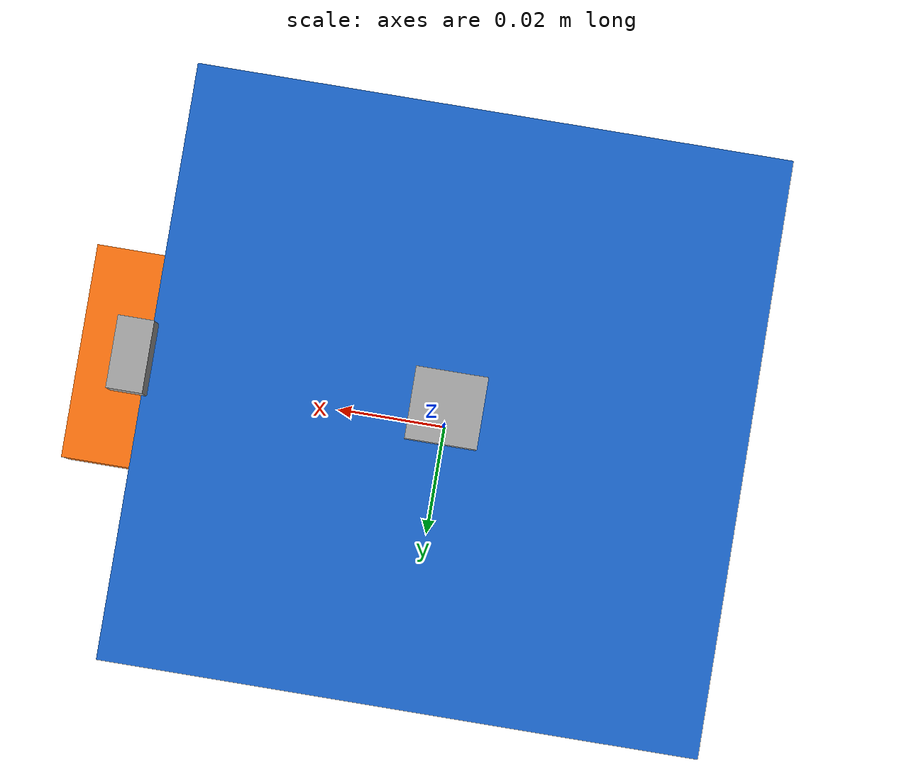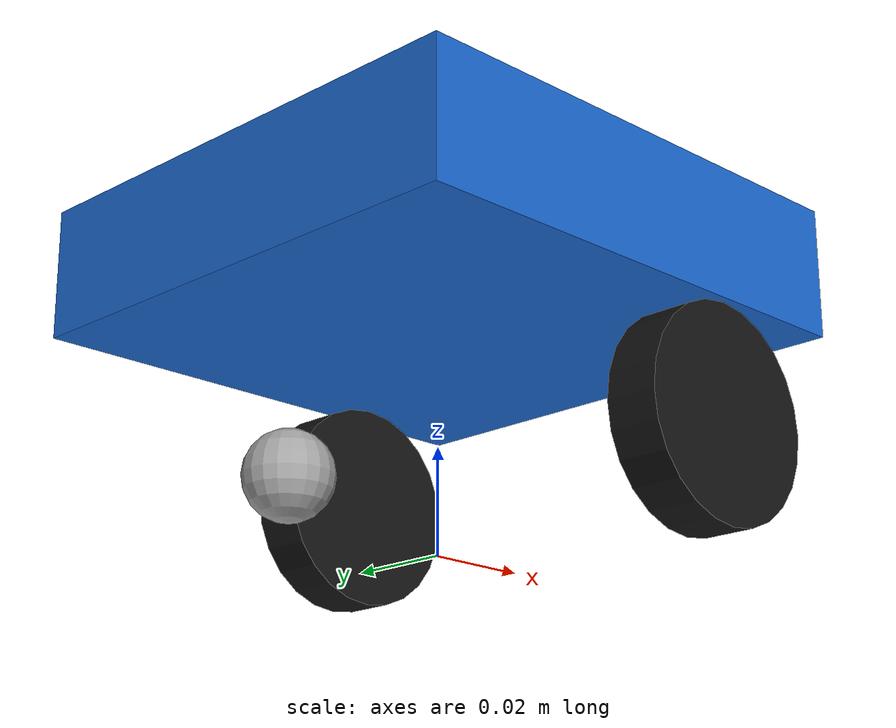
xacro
<?xml version="1.0"?>
<!-- Define the primitive differential-drive robot and optional two-port docking geometry. -->
<robot xmlns:xacro="http://www.ros.org/wiki/xacro" name="swarm_robot">
  <xacro:arg name="formation_docking" default="false"/>
  <xacro:arg name="rear_docking" default="false"/>
  <xacro:arg name="robot_namespace" default="/"/>
  <xacro:arg name="frame_prefix" default=""/>
  <xacro:property name="robot_namespace" value="$(arg robot_namespace)"/>
  <xacro:property name="prefix" value="$(arg frame_prefix)"/>
  <xacro:include filename="swarm_robot.gazebo.xacro"/>
  <xacro:include filename="sensors.xacro"/>
  <xacro:include filename="docking.xacro"/>

  <!-- SI units. +X is forward, +Y is left, +Z is up. -->
  <xacro:property name="length" value="0.10"/>
  <xacro:property name="width" value="0.10"/>
  <xacro:property name="height" value="0.025"/>
  <xacro:property name="body_mass" value="0.20"/>
  <xacro:property name="wheel_radius" value="0.02"/>
  <xacro:property name="wheel_width" value="0.01"/>
  <xacro:property name="wheel_separation" value="0.09"/>
  <xacro:property name="wheel_mass" value="0.015"/>
  <xacro:property name="axle_x" value="0.02"/>
  <xacro:property name="caster_radius" value="0.008"/>
  <xacro:property name="caster_mass" value="0.005"/>
  <!-- Wheels fit under the full-width body with 1 mm clearance. -->
  <xacro:property name="body_z" value="${2 * wheel_radius + 0.001 + height / 2}"/>

  <material name="blue"><color rgba="0.1 0.4 0.8 1"/></material>
  <material name="rubber"><color rgba="0.08 0.08 0.08 1"/></material>
  <material name="silver"><color rgba="0.65 0.65 0.65 1"/></material>

  <!-- Massless ground-level root avoids a KDL root-inertia warning. -->
  <link name="${prefix}base_footprint"/>
  <joint name="${prefix}base_joint" type="fixed">
    <parent link="${prefix}base_footprint"/><child link="${prefix}base_link"/>
    <origin xyz="0 0 ${body_z}"/>
  </joint>
  <link name="${prefix}base_link">
    <visual>
      <geometry><box size="${length} ${width} ${height}"/></geometry>
      <material name="blue"/>
    </visual>
    <collision><geometry><box size="${length} ${width} ${height}"/></geometry></collision>
    <inertial>
      <mass value="${body_mass}"/>
      <!-- Solid box inertia about its centre. -->
      <inertia ixx="${body_mass * (width**2 + height**2) / 12}" ixy="0" ixz="0"
               iyy="${body_mass * (length**2 + height**2) / 12}" iyz="0"
               izz="${body_mass * (length**2 + width**2) / 12}"/>
    </inertial>
  </link>
  <gazebo reference="${prefix}base_link"><material>Gazebo/Blue</material></gazebo>

  <xacro:macro name="wheel" params="side sign">
    <link name="${prefix}${side}_wheel_link">
      <!-- URDF cylinders point along Z; rotate geometry onto the Y axle. -->
      <visual>
        <origin rpy="${pi / 2} 0 0"/>
        <geometry><cylinder radius="${wheel_radius}" length="${wheel_width}"/></geometry>
        <material name="rubber"/>
      </visual>
      <collision>
        <origin rpy="${pi / 2} 0 0"/>
        <geometry><cylinder radius="${wheel_radius}" length="${wheel_width}"/></geometry>
      </collision>
      <inertial>
        <mass value="${wheel_mass}"/>
        <!-- Solid cylinder inertia, expressed with its axle along Y. -->
        <inertia ixx="${wheel_mass * (3 * wheel_radius**2 + wheel_width**2) / 12}"
                 ixy="0" ixz="0" iyy="${wheel_mass * wheel_radius**2 / 2}" iyz="0"
                 izz="${wheel_mass * (3 * wheel_radius**2 + wheel_width**2) / 12}"/>
      </inertial>
    </link>
    <joint name="${prefix}${side}_wheel_joint" type="continuous">
      <parent link="${prefix}base_link"/><child link="${prefix}${side}_wheel_link"/>
      <origin xyz="${axle_x} ${sign * wheel_separation / 2} ${wheel_radius - body_z}"/>
      <axis xyz="0 1 0"/>
      <dynamics damping="0.0001" friction="0.0"/>
    </joint>
    <gazebo reference="${prefix}${side}_wheel_link">
      <material>Gazebo/Black</material>
      <mu1>1.0</mu1><mu2>1.0</mu2>
      <kp>100000</kp><kd>10</kd>
      <minDepth>0.0001</minDepth><maxVel>0.1</maxVel>
    </gazebo>
  </xacro:macro>
  <xacro:wheel side="left" sign="1"/>
  <xacro:wheel side="right" sign="-1"/>

  <!-- Passive ball-caster approximation: fixed sphere with zero tangential
       friction. It supports weight but does not model a swivel mechanism. -->
  <link name="${prefix}caster_link">
    <visual>
      <geometry><sphere radius="${caster_radius}"/></geometry>
      <material name="silver"/>
    </visual>
    <collision><geometry><sphere radius="${caster_radius}"/></geometry></collision>
    <inertial>
      <mass value="${caster_mass}"/>
      <inertia ixx="${0.4 * caster_mass * caster_radius**2}" ixy="0" ixz="0"
               iyy="${0.4 * caster_mass * caster_radius**2}" iyz="0"
               izz="${0.4 * caster_mass * caster_radius**2}"/>
    </inertial>
  </link>
  <joint name="${prefix}caster_joint" type="fixed">
    <parent link="${prefix}base_link"/><child link="${prefix}caster_link"/>
    <origin xyz="-0.035 0 ${caster_radius - body_z}"/>
  </joint>
  <gazebo reference="${prefix}caster_link">
    <material>Gazebo/Grey</material>
    <mu1>0.0</mu1><mu2>0.0</mu2>
    <kp>100000</kp><kd>10</kd>
    <minDepth>0.0001</minDepth><maxVel>0.1</maxVel>
  </gazebo>

  <xacro:if value="$(arg formation_docking)">
    <xacro:formation_dock side="front" sign="1"/>
    <xacro:formation_dock side="rear" sign="-1"/>
  </xacro:if>
  <xacro:unless value="$(arg formation_docking)">
    <xacro:front_dock/>
    <xacro:if value="$(arg rear_docking)"><xacro:rear_dock/></xacro:if>
  </xacro:unless>
  <xacro:swarm_sensors/>
  <xacro:swarm_drive/>
</robot>

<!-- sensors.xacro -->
<!-- Mount and simulate a central IMU and a lightweight three-ray front distance scanner. -->
<robot xmlns:xacro="http://www.ros.org/wiki/xacro">
  <xacro:macro name="sensor_mount" params="name xyz size color">
    <!-- Tiny boxes identify sensor frames; no extra collision at the dock face. -->
    <link name="${prefix}${name}_link">
      <visual>
        <geometry><box size="${size}"/></geometry>
        <material name="${color}"/>
      </visual>
      <inertial>
        <mass value="0.001"/>
        <inertia ixx="1e-8" ixy="0" ixz="0" iyy="1e-8" iyz="0" izz="1e-8"/>
      </inertial>
    </link>
    <joint name="${prefix}${name}_joint" type="fixed">
      <parent link="${prefix}base_link"/><child link="${prefix}${name}_link"/>
      <origin xyz="${xyz}"/>
    </joint>
    <gazebo reference="${prefix}${name}_link"><material>Gazebo/Grey</material></gazebo>
  </xacro:macro>

  <xacro:macro name="swarm_sensors" params="">
    <!-- At the chassis centre in XY, just above its top face. -->
    <xacro:sensor_mount name="imu" xyz="0 0 ${height / 2 + 0.003}"
                        size="0.012 0.012 0.004" color="silver"/>
    <gazebo reference="${prefix}imu_link">
      <sensor name="imu_sensor" type="imu">
        <always_on>true</always_on>
        <update_rate>100</update_rate>
        <visualize>false</visualize>
        <!-- Ideal IMU: no bias, drift or noise model in this milestone. -->
        <plugin name="imu" filename="libgazebo_ros_imu_sensor.so">
          <ros>
            <namespace>${robot_namespace}</namespace>
            <remapping>~/out:=imu/data</remapping>
          </ros>
          <frame_name>${prefix}imu_link</frame_name>
          <initial_orientation_as_reference>false</initial_orientation_as_reference>
        </plugin>
      </sensor>
    </gazebo>

    <!-- Above the front lip; leaves the lower front free for a future dock.
         Local +X is the measurement axis. A three-ray fan is not a full lidar. -->
    <xacro:sensor_mount name="front_range" xyz="${length / 2 + 0.002} 0 ${height / 2 + 0.005}"
                        size="0.006 0.012 0.008" color="silver"/>
    <gazebo reference="${prefix}front_range_link">
      <sensor name="front_range_sensor" type="ray">
        <always_on>true</always_on>
        <update_rate>20</update_rate>
        <visualize>true</visualize>
        <ray>
          <scan>
            <horizontal>
              <samples>3</samples><resolution>1</resolution>
              <min_angle>-0.025</min_angle><max_angle>0.025</max_angle>
            </horizontal>
          </scan>
          <range><min>0.02</min><max>2.0</max><resolution>0.001</resolution></range>
        </ray>
        <plugin name="front_range" filename="libgazebo_ros_ray_sensor.so">
          <ros>
            <namespace>${robot_namespace}</namespace>
            <remapping>~/out:=range/front</remapping>
          </ros>
          <!-- LaserScan retains +inf for no return. Classic's Range conversion
               uses FLT_MAX, rejected by this Humble Python Range binding. -->
          <output_type>sensor_msgs/LaserScan</output_type>
          <frame_name>${prefix}front_range_link</frame_name>
        </plugin>
      </sensor>
    </gazebo>
  </xacro:macro>
</robot>

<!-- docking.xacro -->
<!-- Define passive docking plates or ideal front/rear angular-capture connectors and frames. -->
<robot xmlns:xacro="http://www.ros.org/wiki/xacro">
  <xacro:macro name="front_dock" params="">
    <!-- Phase 1: passive 36 x 12 x 14 mm plate; no latch or attachment plugin.
         Outer face at x=0.062 m for the existing 100 mm chassis. -->
    <link name="${prefix}front_dock_link">
      <visual>
        <geometry><box size="0.012 0.036 0.014"/></geometry>
        <material name="dock_orange"><color rgba="1 0.45 0.05 1"/></material>
      </visual>
      <collision><geometry><box size="0.012 0.036 0.014"/></geometry></collision>
      <inertial>
        <mass value="0.003"/>
        <inertia ixx="${0.003 * (0.036**2 + 0.014**2) / 12}" ixy="0" ixz="0"
                 iyy="${0.003 * (0.012**2 + 0.014**2) / 12}" iyz="0"
                 izz="${0.003 * (0.012**2 + 0.036**2) / 12}"/>
      </inertial>
    </link>
    <joint name="${prefix}front_dock_joint" type="fixed">
      <parent link="${prefix}base_link"/><child link="${prefix}front_dock_link"/>
      <origin xyz="${length / 2 + 0.006} 0 0"/>
    </joint>
    <gazebo reference="${prefix}front_dock_link"><material>Gazebo/Orange</material></gazebo>
    <!-- +X is outward from the mating face. Two docked frames face opposite ways. -->
    <link name="${prefix}front_dock_frame"/>
    <joint name="${prefix}front_dock_frame_joint" type="fixed">
      <parent link="${prefix}front_dock_link"/><child link="${prefix}front_dock_frame"/>
      <origin xyz="0.006 0 0"/>
    </joint>
  </xacro:macro>
  <xacro:macro name="rear_dock" params="">
    <!-- Optional rear interface for the shape-formation experiment. -->
    <link name="${prefix}rear_dock_link">
      <visual><geometry><box size="0.012 0.036 0.014"/></geometry>
        <material name="rear_purple"><color rgba="0.6 0.2 0.8 1"/></material></visual>
      <collision><geometry><box size="0.012 0.036 0.014"/></geometry></collision>
      <inertial><mass value="0.003"/>
        <inertia ixx="${0.003 * (0.036**2 + 0.014**2) / 12}" ixy="0" ixz="0"
                 iyy="${0.003 * (0.012**2 + 0.014**2) / 12}" iyz="0"
                 izz="${0.003 * (0.012**2 + 0.036**2) / 12}"/>
      </inertial>
    </link>
    <joint name="${prefix}rear_dock_joint" type="fixed">
      <parent link="${prefix}base_link"/><child link="${prefix}rear_dock_link"/>
      <origin xyz="${-length / 2 - 0.006} 0 0"/>
    </joint>
    <gazebo reference="${prefix}rear_dock_link"><material>Gazebo/Purple</material></gazebo>
    <link name="${prefix}rear_dock_frame"/>
    <joint name="${prefix}rear_dock_frame_joint" type="fixed">
      <parent link="${prefix}rear_dock_link"/><child link="${prefix}rear_dock_frame"/>
      <origin xyz="-0.006 0 0" rpy="0 0 ${pi}"/>
    </joint>
  </xacro:macro>
  <xacro:macro name="formation_dock" params="side sign">
    <link name="${prefix}${side}_dock_link">
      <visual><origin xyz="${sign * 0.078} 0 0"/>
        <geometry><box size="0.056 0.010 0.010"/></geometry><material name="silver"/></visual>
      <visual><origin xyz="${sign * 0.11} 0 0"/>
        <geometry><sphere radius="0.008"/></geometry>
        <material name="capture_green"><color rgba="0.2 0.9 0.3 1"/></material></visual>
      <inertial><origin xyz="${sign * 0.08} 0 0"/><mass value="0.003"/>
        <inertia ixx="0.00000005" ixy="0" ixz="0" iyy="0.000001" iyz="0" izz="0.000001"/>
      </inertial>
    </link>
    <joint name="${prefix}${side}_dock_joint" type="fixed">
      <parent link="${prefix}base_link"/><child link="${prefix}${side}_dock_link"/>
    </joint>
    <gazebo reference="${prefix}${side}_dock_link"><material>Gazebo/Green</material></gazebo>
    <link name="${prefix}${side}_dock_frame"/>
    <joint name="${prefix}${side}_dock_frame_joint" type="fixed">
      <parent link="${prefix}${side}_dock_link"/><child link="${prefix}${side}_dock_frame"/>
      <origin xyz="${sign * 0.11} 0 0" rpy="0 0 ${0 if sign == 1 else pi}"/>
    </joint>
  </xacro:macro>
</robot>
